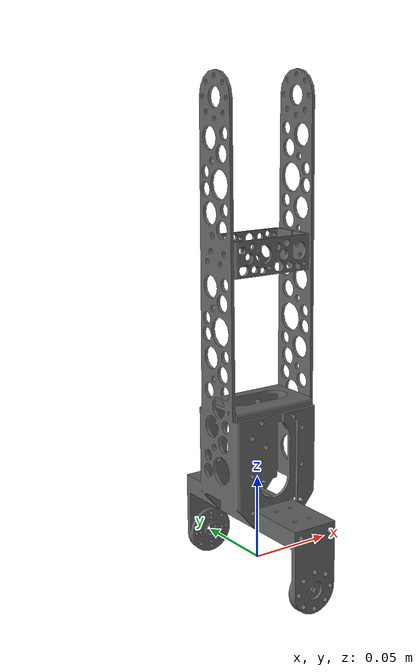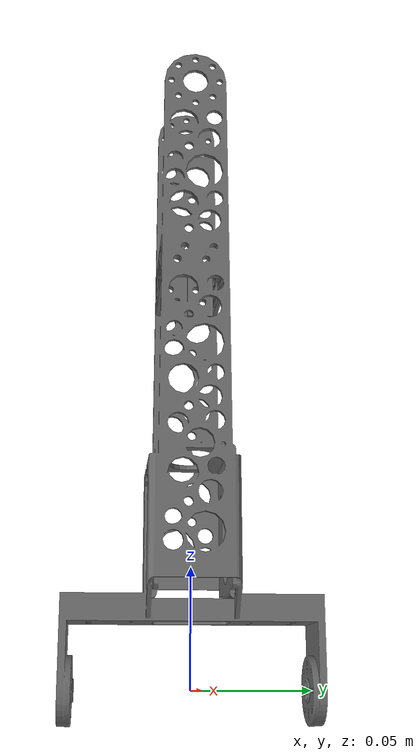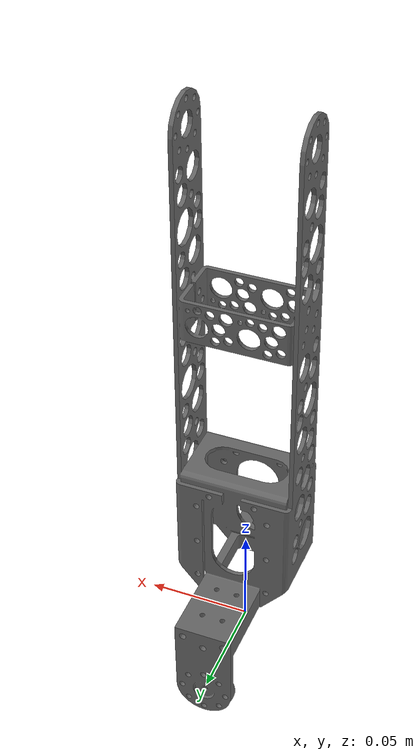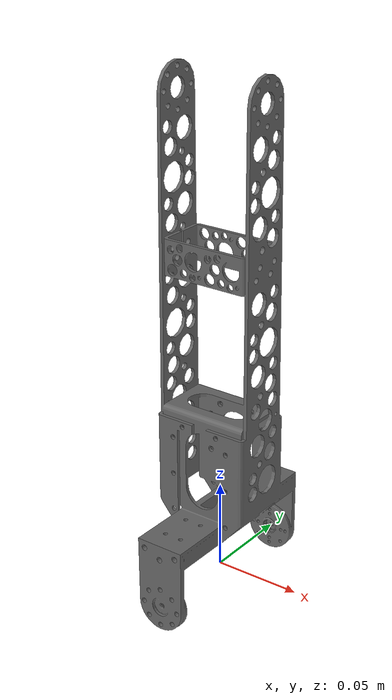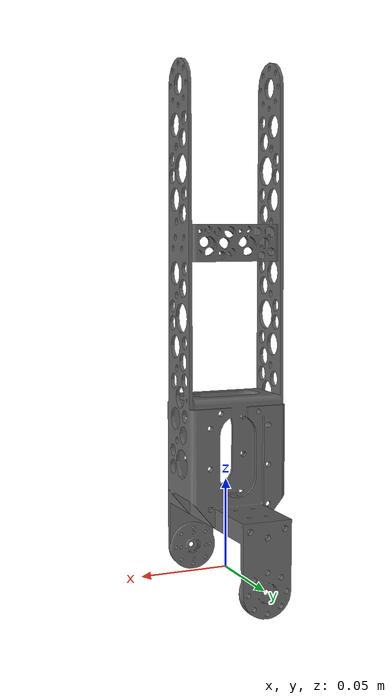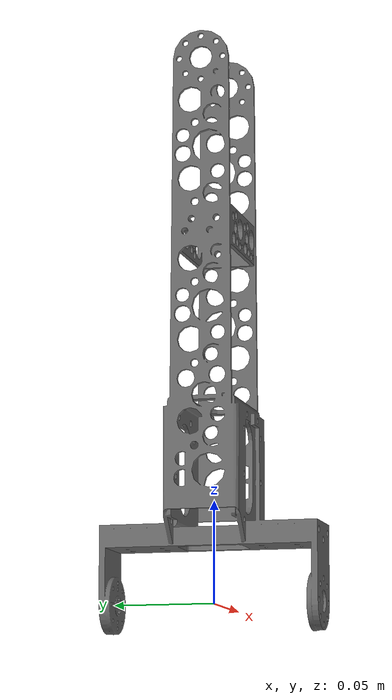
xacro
<robot name="shoulder_link"><link name="shoulder_link">
    <inertial>
      <origin rpy="0 0 0" xyz="-4.66231481405233E-06 -9.82289126283389E-05 0.0772888499682157" />
      <mass value="0.191480823048406" />
      <inertia ixx="0.00107301595696304" ixy="-2.9789063890745E-07" ixz="-2.01216953964121E-08" iyy="0.000975953125213584" iyz="-1.19601921452086E-06" izz="0.000217659789393094" />
    </inertial>
    <visual>
      <origin rpy="0 0 0" xyz="0 0 0" />
      <geometry>
        <mesh filename="package://robotican_description/komodo/meshes/shoulder_link.STL" />
      </geometry>
      <material name="">
        <color rgba="0.4 0.4 0.4 1" />
      </material>
    </visual>
    <collision>
      <origin rpy="0 0 0" xyz="0 0 0" />
      <geometry>
        <mesh filename="package://robotican_description/komodo/meshes/shoulder_link.STL" />
      </geometry>
    </collision>
  </link>
  </robot>
